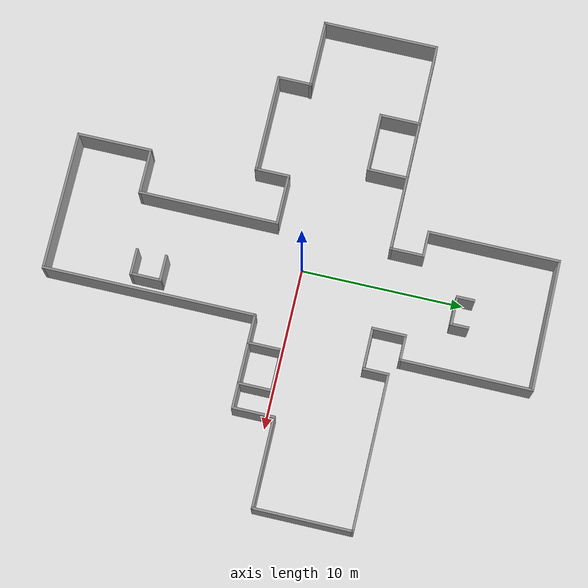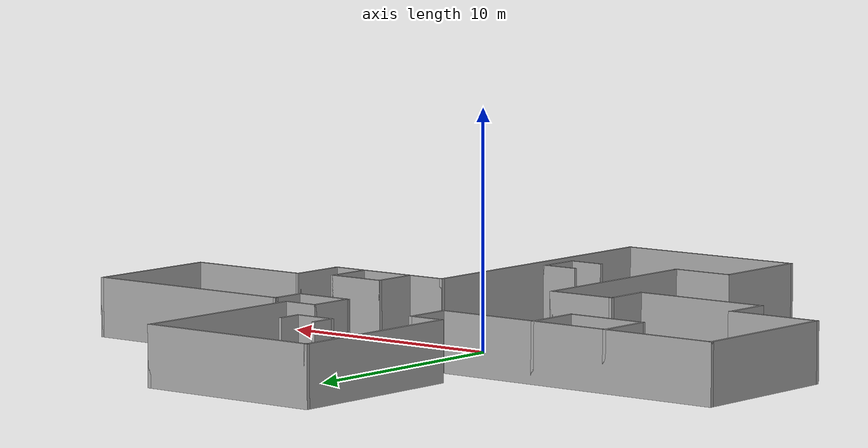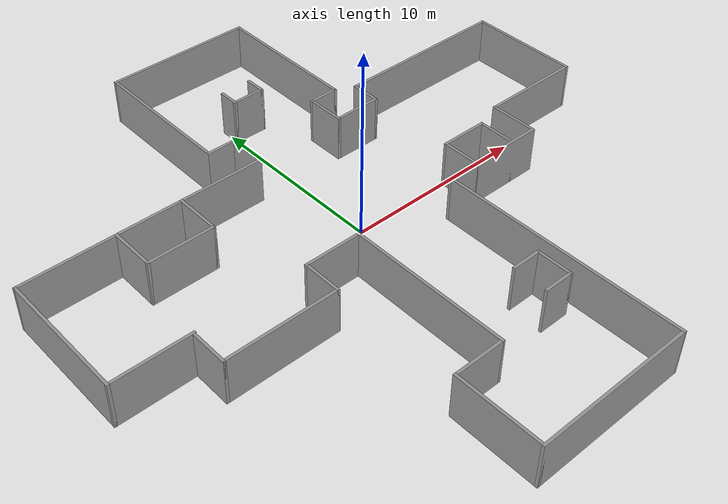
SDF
<?xml version='1.0'?>
<sdf version='1.7'>
  <model name='map2'>
    <pose>0 0 0 0 -0 0</pose>
    <link name='Wall_1'>
      <collision name='Wall_1_Collision'>
        <geometry>
          <box>
            <size>8.15 0.15 2.5</size>
          </box>
        </geometry>
        <pose>0 0 1.25 0 -0 0</pose>
      </collision>
      <visual name='Wall_1_Visual'>
        <pose>0 0 1.25 0 -0 0</pose>
        <geometry>
          <box>
            <size>8.15 0.15 2.5</size>
          </box>
        </geometry>
        <material>
          <script>
            <uri>file://media/materials/scripts/gazebo.material</uri>
            <name>Gazebo/Grey</name>
          </script>
          <ambient>1 1 1 1</ambient>
        </material>
        <meta>
          <layer>0</layer>
        </meta>
      </visual>
      <pose>-3.5 11 0 0 -0 -1.5708</pose>
    </link>
    <link name='Wall_11'>
      <collision name='Wall_11_Collision'>
        <geometry>
          <box>
            <size>1.65 0.15 2.5</size>
          </box>
        </geometry>
        <pose>0 0 1.25 0 -0 0</pose>
      </collision>
      <visual name='Wall_11_Visual'>
        <pose>0 0 1.25 0 -0 0</pose>
        <geometry>
          <box>
            <size>1.65 0.15 2.5</size>
          </box>
        </geometry>
        <material>
          <script>
            <uri>file://media/materials/scripts/gazebo.material</uri>
            <name>Gazebo/Grey</name>
          </script>
          <ambient>1 1 1 1</ambient>
        </material>
        <meta>
          <layer>0</layer>
        </meta>
      </visual>
      <pose>3.75 7 0 0 -0 0</pose>
    </link>
    <link name='Wall_13'>
      <collision name='Wall_13_Collision'>
        <geometry>
          <box>
            <size>8.15 0.15 2.5</size>
          </box>
        </geometry>
        <pose>0 0 1.25 0 -0 0</pose>
      </collision>
      <visual name='Wall_13_Visual'>
        <pose>0 0 1.25 0 -0 0</pose>
        <geometry>
          <box>
            <size>8.15 0.15 2.5</size>
          </box>
        </geometry>
        <material>
          <script>
            <uri>file://media/materials/scripts/gazebo.material</uri>
            <name>Gazebo/Grey</name>
          </script>
          <ambient>1 1 1 1</ambient>
        </material>
        <meta>
          <layer>0</layer>
        </meta>
      </visual>
      <pose>0.5 15 0 0 -0 0</pose>
    </link>
    <link name='Wall_15'>
      <collision name='Wall_15_Collision'>
        <geometry>
          <box>
            <size>13.15 0.15 2.5</size>
          </box>
        </geometry>
        <pose>0 0 1.25 0 -0 0</pose>
      </collision>
      <visual name='Wall_15_Visual'>
        <pose>0 0 1.25 0 -0 0</pose>
        <geometry>
          <box>
            <size>13.15 0.15 2.5</size>
          </box>
        </geometry>
        <material>
          <script>
            <uri>file://media/materials/scripts/gazebo.material</uri>
            <name>Gazebo/Grey</name>
          </script>
          <ambient>1 1 1 1</ambient>
        </material>
        <meta>
          <layer>0</layer>
        </meta>
      </visual>
      <pose>-8.5 5 0 0 -0 3.14159</pose>
    </link>
    <link name='Wall_17'>
      <collision name='Wall_17_Collision'>
        <geometry>
          <box>
            <size>3.65 0.15 2.5</size>
          </box>
        </geometry>
        <pose>0 0 1.25 0 -0 0</pose>
      </collision>
      <visual name='Wall_17_Visual'>
        <pose>0 0 1.25 0 -0 0</pose>
        <geometry>
          <box>
            <size>3.65 0.15 2.5</size>
          </box>
        </geometry>
        <material>
          <script>
            <uri>file://media/materials/scripts/gazebo.material</uri>
            <name>Gazebo/Grey</name>
          </script>
          <ambient>1 1 1 1</ambient>
        </material>
        <meta>
          <layer>0</layer>
        </meta>
      </visual>
      <pose>-8.25 2.6 0 0 -0 0</pose>
    </link>
    <link name='Wall_19'>
      <collision name='Wall_19_Collision'>
        <geometry>
          <box>
            <size>4.24305 0.15 2.5</size>
          </box>
        </geometry>
        <pose>0 0 1.25 0 -0 0</pose>
      </collision>
      <visual name='Wall_19_Visual'>
        <pose>0 0 1.25 0 -0 0</pose>
        <geometry>
          <box>
            <size>4.24305 0.15 2.5</size>
          </box>
        </geometry>
        <material>
          <script>
            <uri>file://media/materials/scripts/gazebo.material</uri>
            <name>Gazebo/Grey</name>
          </script>
          <ambient>1 1 1 1</ambient>
        </material>
        <meta>
          <layer>0</layer>
        </meta>
      </visual>
      <pose>-12.9535 -2 0 0 -0 0</pose>
    </link>
    <link name='Wall_21'>
      <collision name='Wall_21_Collision'>
        <geometry>
          <box>
            <size>6.05695 0.15 2.5</size>
          </box>
        </geometry>
        <pose>0 0 1.25 0 -0 0</pose>
      </collision>
      <visual name='Wall_21_Visual'>
        <pose>0 0 1.25 0 -0 0</pose>
        <geometry>
          <box>
            <size>6.05695 0.15 2.5</size>
          </box>
        </geometry>
        <material>
          <script>
            <uri>file://media/materials/scripts/gazebo.material</uri>
            <name>Gazebo/Grey</name>
          </script>
          <ambient>1 1 1 1</ambient>
        </material>
        <meta>
          <layer>0</layer>
        </meta>
      </visual>
      <pose>-7.95348 -4 0 0 -0 0</pose>
    </link>
    <link name='Wall_23'>
      <collision name='Wall_23_Collision'>
        <geometry>
          <box>
            <size>3.15 0.15 2.5</size>
          </box>
        </geometry>
        <pose>0 0 1.25 0 -0 0</pose>
      </collision>
      <visual name='Wall_23_Visual'>
        <pose>0 0 1.25 0 -0 0</pose>
        <geometry>
          <box>
            <size>3.15 0.15 2.5</size>
          </box>
        </geometry>
        <material>
          <script>
            <uri>file://media/materials/scripts/gazebo.material</uri>
            <name>Gazebo/Grey</name>
          </script>
          <ambient>1 1 1 1</ambient>
        </material>
        <meta>
          <layer>0</layer>
        </meta>
      </visual>
      <pose>-3.5 -2 0 0 -0 0</pose>
    </link>
    <link name='Wall_25'>
      <collision name='Wall_25_Collision'>
        <geometry>
          <box>
            <size>2.15 0.15 2.5</size>
          </box>
        </geometry>
        <pose>0 0 1.25 0 -0 0</pose>
      </collision>
      <visual name='Wall_25_Visual'>
        <pose>0 0 1.25 0 -0 0</pose>
        <geometry>
          <box>
            <size>2.15 0.15 2.5</size>
          </box>
        </geometry>
        <material>
          <script>
            <uri>file://media/materials/scripts/gazebo.material</uri>
            <name>Gazebo/Grey</name>
          </script>
          <ambient>1 1 1 1</ambient>
        </material>
        <meta>
          <layer>0</layer>
        </meta>
      </visual>
      <pose>-10.9535 -3 0 0 -0 -1.5708</pose>
    </link>
    <link name='Wall_27'>
      <collision name='Wall_27_Collision'>
        <geometry>
          <box>
            <size>2.15 0.15 2.5</size>
          </box>
        </geometry>
        <pose>0 0 1.25 0 -0 0</pose>
      </collision>
      <visual name='Wall_27_Visual'>
        <pose>0 0 1.25 0 -0 0</pose>
        <geometry>
          <box>
            <size>2.15 0.15 2.5</size>
          </box>
        </geometry>
        <material>
          <script>
            <uri>file://media/materials/scripts/gazebo.material</uri>
            <name>Gazebo/Grey</name>
          </script>
          <ambient>1 1 1 1</ambient>
        </material>
        <meta>
          <layer>0</layer>
        </meta>
      </visual>
      <pose>-5 -3 0 0 -0 -1.5708</pose>
    </link>
    <link name='Wall_29'>
      <collision name='Wall_29_Collision'>
        <geometry>
          <box>
            <size>7.15 0.15 2.5</size>
          </box>
        </geometry>
        <pose>0 0 1.25 0 -0 0</pose>
      </collision>
      <visual name='Wall_29_Visual'>
        <pose>0 0 1.25 0 -0 0</pose>
        <geometry>
          <box>
            <size>7.15 0.15 2.5</size>
          </box>
        </geometry>
        <material>
          <script>
            <uri>file://media/materials/scripts/gazebo.material</uri>
            <name>Gazebo/Grey</name>
          </script>
          <ambient>1 1 1 1</ambient>
        </material>
        <meta>
          <layer>0</layer>
        </meta>
      </visual>
      <pose>-15 1.5 0 0 -0 -1.5708</pose>
    </link>
    <link name='Wall_3'>
      <collision name='Wall_3_Collision'>
        <geometry>
          <box>
            <size>2.15 0.15 2.5</size>
          </box>
        </geometry>
        <pose>0 0 1.25 0 -0 0</pose>
      </collision>
      <visual name='Wall_3_Visual'>
        <pose>0 0 1.25 0 -0 0</pose>
        <geometry>
          <box>
            <size>2.15 0.15 2.5</size>
          </box>
        </geometry>
        <material>
          <script>
            <uri>file://media/materials/scripts/gazebo.material</uri>
            <name>Gazebo/Grey</name>
          </script>
          <ambient>1 1 1 1</ambient>
        </material>
        <meta>
          <layer>0</layer>
        </meta>
      </visual>
      <pose>-2 6 0 0 -0 -1.5708</pose>
    </link>
    <link name='Wall_31'>
      <collision name='Wall_31_Collision'>
        <geometry>
          <box>
            <size>2.55 0.15 2.5</size>
          </box>
        </geometry>
        <pose>0 0 1.25 0 -0 0</pose>
      </collision>
      <visual name='Wall_31_Visual'>
        <pose>0 0 1.25 0 -0 0</pose>
        <geometry>
          <box>
            <size>2.55 0.15 2.5</size>
          </box>
        </geometry>
        <material>
          <script>
            <uri>file://media/materials/scripts/gazebo.material</uri>
            <name>Gazebo/Grey</name>
          </script>
          <ambient>1 1 1 1</ambient>
        </material>
        <meta>
          <layer>0</layer>
        </meta>
      </visual>
      <pose>-10 3.8 0 0 -0 1.5708</pose>
    </link>
    <link name='Wall_33'>
      <collision name='Wall_33_Collision'>
        <geometry>
          <box>
            <size>2.55 0.15 2.5</size>
          </box>
        </geometry>
        <pose>0 0 1.25 0 -0 0</pose>
      </collision>
      <visual name='Wall_33_Visual'>
        <pose>0 0 1.25 0 -0 0</pose>
        <geometry>
          <box>
            <size>2.55 0.15 2.5</size>
          </box>
        </geometry>
        <material>
          <script>
            <uri>file://media/materials/scripts/gazebo.material</uri>
            <name>Gazebo/Grey</name>
          </script>
          <ambient>1 1 1 1</ambient>
        </material>
        <meta>
          <layer>0</layer>
        </meta>
      </visual>
      <pose>-6.5 3.8 0 0 -0 1.5708</pose>
    </link>
    <link name='Wall_35'>
      <collision name='Wall_35_Collision'>
        <geometry>
          <box>
            <size>8.65 0.15 2.5</size>
          </box>
        </geometry>
        <pose>0 0 1.25 0 -0 0</pose>
      </collision>
      <visual name='Wall_35_Visual'>
        <pose>0 0 1.25 0 -0 0</pose>
        <geometry>
          <box>
            <size>8.65 0.15 2.5</size>
          </box>
        </geometry>
        <material>
          <script>
            <uri>file://media/materials/scripts/gazebo.material</uri>
            <name>Gazebo/Grey</name>
          </script>
          <ambient>1 1 1 1</ambient>
        </material>
        <meta>
          <layer>0</layer>
        </meta>
      </visual>
      <pose>-2 -6.25 0 0 -0 -1.5708</pose>
    </link>
    <link name='Wall_37'>
      <collision name='Wall_37_Collision'>
        <geometry>
          <box>
            <size>4.65 0.15 2.5</size>
          </box>
        </geometry>
        <pose>0 0 1.25 0 -0 0</pose>
      </collision>
      <visual name='Wall_37_Visual'>
        <pose>0 0 1.25 0 -0 0</pose>
        <geometry>
          <box>
            <size>4.65 0.15 2.5</size>
          </box>
        </geometry>
        <material>
          <script>
            <uri>file://media/materials/scripts/gazebo.material</uri>
            <name>Gazebo/Grey</name>
          </script>
          <ambient>1 1 1 1</ambient>
        </material>
        <meta>
          <layer>0</layer>
        </meta>
      </visual>
      <pose>-4.7 -12.75 0 0 -0 1.5708</pose>
    </link>
    <link name='Wall_39'>
      <collision name='Wall_39_Collision'>
        <geometry>
          <box>
            <size>13.15 0.15 2.5</size>
          </box>
        </geometry>
        <pose>0 0 1.25 0 -0 0</pose>
      </collision>
      <visual name='Wall_39_Visual'>
        <pose>0 0 1.25 0 -0 0</pose>
        <geometry>
          <box>
            <size>13.15 0.15 2.5</size>
          </box>
        </geometry>
        <material>
          <script>
            <uri>file://media/materials/scripts/gazebo.material</uri>
            <name>Gazebo/Grey</name>
          </script>
          <ambient>1 1 1 1</ambient>
        </material>
        <meta>
          <layer>0</layer>
        </meta>
      </visual>
      <pose>3.8 -8.5 0 0 -0 -1.5708</pose>
    </link>
    <link name='Wall_41'>
      <collision name='Wall_41_Collision'>
        <geometry>
          <box>
            <size>2.85 0.15 2.5</size>
          </box>
        </geometry>
        <pose>0 0 1.25 0 -0 0</pose>
      </collision>
      <visual name='Wall_41_Visual'>
        <pose>0 0 1.25 0 -0 0</pose>
        <geometry>
          <box>
            <size>2.85 0.15 2.5</size>
          </box>
        </geometry>
        <material>
          <script>
            <uri>file://media/materials/scripts/gazebo.material</uri>
            <name>Gazebo/Grey</name>
          </script>
          <ambient>1 1 1 1</ambient>
        </material>
        <meta>
          <layer>0</layer>
        </meta>
      </visual>
      <pose>-3.35 -10.5 0 0 -0 0</pose>
    </link>
    <link name='Wall_43'>
      <collision name='Wall_43_Collision'>
        <geometry>
          <box>
            <size>8.65 0.15 2.5</size>
          </box>
        </geometry>
        <pose>0 0 1.25 0 -0 0</pose>
      </collision>
      <visual name='Wall_43_Visual'>
        <pose>0 0 1.25 0 -0 0</pose>
        <geometry>
          <box>
            <size>8.65 0.15 2.5</size>
          </box>
        </geometry>
        <material>
          <script>
            <uri>file://media/materials/scripts/gazebo.material</uri>
            <name>Gazebo/Grey</name>
          </script>
          <ambient>1 1 1 1</ambient>
        </material>
        <meta>
          <layer>0</layer>
        </meta>
      </visual>
      <pose>-0.45 -15 0 0 -0 0</pose>
    </link>
    <link name='Wall_45'>
      <collision name='Wall_45_Collision'>
        <geometry>
          <box>
            <size>2.65 0.15 2.5</size>
          </box>
        </geometry>
        <pose>0 0 1.25 0 -0 0</pose>
      </collision>
      <visual name='Wall_45_Visual'>
        <pose>0 0 1.25 0 -0 0</pose>
        <geometry>
          <box>
            <size>2.65 0.15 2.5</size>
          </box>
        </geometry>
        <material>
          <script>
            <uri>file://media/materials/scripts/gazebo.material</uri>
            <name>Gazebo/Grey</name>
          </script>
          <ambient>1 1 1 1</ambient>
        </material>
        <meta>
          <layer>0</layer>
        </meta>
      </visual>
      <pose>9.5 -0.75 0 0 -0 1.5708</pose>
    </link>
    <link name='Wall_47'>
      <collision name='Wall_47_Collision'>
        <geometry>
          <box>
            <size>6.15 0.15 2.5</size>
          </box>
        </geometry>
        <pose>0 0 1.25 0 -0 0</pose>
      </collision>
      <visual name='Wall_47_Visual'>
        <pose>0 0 1.25 0 -0 0</pose>
        <geometry>
          <box>
            <size>6.15 0.15 2.5</size>
          </box>
        </geometry>
        <material>
          <script>
            <uri>file://media/materials/scripts/gazebo.material</uri>
            <name>Gazebo/Grey</name>
          </script>
          <ambient>1 1 1 1</ambient>
        </material>
        <meta>
          <layer>0</layer>
        </meta>
      </visual>
      <pose>15 3.5 0 0 -0 1.5708</pose>
    </link>
    <link name='Wall_49'>
      <collision name='Wall_49_Collision'>
        <geometry>
          <box>
            <size>1.65 0.15 2.5</size>
          </box>
        </geometry>
        <pose>0 0 1.25 0 -0 0</pose>
      </collision>
      <visual name='Wall_49_Visual'>
        <pose>0 0 1.25 0 -0 0</pose>
        <geometry>
          <box>
            <size>1.65 0.15 2.5</size>
          </box>
        </geometry>
        <material>
          <script>
            <uri>file://media/materials/scripts/gazebo.material</uri>
            <name>Gazebo/Grey</name>
          </script>
          <ambient>1 1 1 1</ambient>
        </material>
        <meta>
          <layer>0</layer>
        </meta>
      </visual>
      <pose>5.5 5.75 0 0 -0 1.5708</pose>
    </link>
    <link name='Wall_5'>
      <collision name='Wall_5_Collision'>
        <geometry>
          <box>
            <size>2.15 0.15 2.5</size>
          </box>
        </geometry>
        <pose>0 0 1.25 0 -0 0</pose>
      </collision>
      <visual name='Wall_5_Visual'>
        <pose>0 0 1.25 0 -0 0</pose>
        <geometry>
          <box>
            <size>2.15 0.15 2.5</size>
          </box>
        </geometry>
        <material>
          <script>
            <uri>file://media/materials/scripts/gazebo.material</uri>
            <name>Gazebo/Grey</name>
          </script>
          <ambient>1 1 1 1</ambient>
        </material>
        <meta>
          <layer>0</layer>
        </meta>
      </visual>
      <pose>3 6 0 0 -0 -1.5708</pose>
    </link>
    <link name='Wall_51'>
      <collision name='Wall_51_Collision'>
        <geometry>
          <box>
            <size>9.65 0.15 2.5</size>
          </box>
        </geometry>
        <pose>0 0 1.25 0 -0 0</pose>
      </collision>
      <visual name='Wall_51_Visual'>
        <pose>0 0 1.25 0 -0 0</pose>
        <geometry>
          <box>
            <size>9.65 0.15 2.5</size>
          </box>
        </geometry>
        <material>
          <script>
            <uri>file://media/materials/scripts/gazebo.material</uri>
            <name>Gazebo/Grey</name>
          </script>
          <ambient>1 1 1 1</ambient>
        </material>
        <meta>
          <layer>0</layer>
        </meta>
      </visual>
      <pose>10.25 6.5 0 0 -0 0</pose>
    </link>
    <link name='Wall_53'>
      <collision name='Wall_53_Collision'>
        <geometry>
          <box>
            <size>5.65 0.15 2.5</size>
          </box>
        </geometry>
        <pose>0 0 1.25 0 -0 0</pose>
      </collision>
      <visual name='Wall_53_Visual'>
        <pose>0 0 1.25 0 -0 0</pose>
        <geometry>
          <box>
            <size>5.65 0.15 2.5</size>
          </box>
        </geometry>
        <material>
          <script>
            <uri>file://media/materials/scripts/gazebo.material</uri>
            <name>Gazebo/Grey</name>
          </script>
          <ambient>1 1 1 1</ambient>
        </material>
        <meta>
          <layer>0</layer>
        </meta>
      </visual>
      <pose>12.25 0.5 0 0 -0 0</pose>
    </link>
    <link name='Wall_55'>
      <collision name='Wall_55_Collision'>
        <geometry>
          <box>
            <size>5.85 0.15 2.5</size>
          </box>
        </geometry>
        <pose>0 0 1.25 0 -0 0</pose>
      </collision>
      <visual name='Wall_55_Visual'>
        <pose>0 0 1.25 0 -0 0</pose>
        <geometry>
          <box>
            <size>5.85 0.15 2.5</size>
          </box>
        </geometry>
        <material>
          <script>
            <uri>file://media/materials/scripts/gazebo.material</uri>
            <name>Gazebo/Grey</name>
          </script>
          <ambient>1 1 1 1</ambient>
        </material>
        <meta>
          <layer>0</layer>
        </meta>
      </visual>
      <pose>6.65 -2 0 0 -0 0</pose>
    </link>
    <link name='Wall_57'>
      <collision name='Wall_57_Collision'>
        <geometry>
          <box>
            <size>2.65 0.15 2.5</size>
          </box>
        </geometry>
        <pose>0 0 1.25 0 -0 0</pose>
      </collision>
      <visual name='Wall_57_Visual'>
        <pose>0 0 1.25 0 -0 0</pose>
        <geometry>
          <box>
            <size>2.65 0.15 2.5</size>
          </box>
        </geometry>
        <material>
          <script>
            <uri>file://media/materials/scripts/gazebo.material</uri>
            <name>Gazebo/Grey</name>
          </script>
          <ambient>1 1 1 1</ambient>
        </material>
        <meta>
          <layer>0</layer>
        </meta>
      </visual>
      <pose>4.25 5 0 0 -0 0</pose>
    </link>
    <link name='Wall_59'>
      <collision name='Wall_59_Collision'>
        <geometry>
          <box>
            <size>2.65 0.15 2.5</size>
          </box>
        </geometry>
        <pose>0 0 1.25 0 -0 0</pose>
      </collision>
      <visual name='Wall_59_Visual'>
        <pose>0 0 1.25 0 -0 0</pose>
        <geometry>
          <box>
            <size>2.65 0.15 2.5</size>
          </box>
        </geometry>
        <material>
          <script>
            <uri>file://media/materials/scripts/gazebo.material</uri>
            <name>Gazebo/Grey</name>
          </script>
          <ambient>1 1 1 1</ambient>
        </material>
        <meta>
          <layer>0</layer>
        </meta>
      </visual>
      <pose>6.75 0 0 0 -0 0</pose>
    </link>
    <link name='Wall_61'>
      <collision name='Wall_61_Collision'>
        <geometry>
          <box>
            <size>2.15 0.15 2.5</size>
          </box>
        </geometry>
        <pose>0 0 1.25 0 -0 0</pose>
      </collision>
      <visual name='Wall_61_Visual'>
        <pose>0 0 1.25 0 -0 0</pose>
        <geometry>
          <box>
            <size>2.15 0.15 2.5</size>
          </box>
        </geometry>
        <material>
          <script>
            <uri>file://media/materials/scripts/gazebo.material</uri>
            <name>Gazebo/Grey</name>
          </script>
          <ambient>1 1 1 1</ambient>
        </material>
        <meta>
          <layer>0</layer>
        </meta>
      </visual>
      <pose>5.5 -1 0 0 -0 -1.5708</pose>
    </link>
    <link name='Wall_63'>
      <collision name='Wall_63_Collision'>
        <geometry>
          <box>
            <size>2.15 0.15 2.5</size>
          </box>
        </geometry>
        <pose>0 0 1.25 0 -0 0</pose>
      </collision>
      <visual name='Wall_63_Visual'>
        <pose>0 0 1.25 0 -0 0</pose>
        <geometry>
          <box>
            <size>2.15 0.15 2.5</size>
          </box>
        </geometry>
        <material>
          <script>
            <uri>file://media/materials/scripts/gazebo.material</uri>
            <name>Gazebo/Grey</name>
          </script>
          <ambient>1 1 1 1</ambient>
        </material>
        <meta>
          <layer>0</layer>
        </meta>
      </visual>
      <pose>8 -1 0 0 -0 -1.5708</pose>
    </link>
    <link name='Wall_65'>
      <collision name='Wall_65_Collision'>
        <geometry>
          <box>
            <size>1.15 0.15 2.5</size>
          </box>
        </geometry>
        <pose>0 0 1.25 0 -0 0</pose>
      </collision>
      <visual name='Wall_65_Visual'>
        <pose>0 0 1.25 0 -0 0</pose>
        <geometry>
          <box>
            <size>1.15 0.15 2.5</size>
          </box>
        </geometry>
        <material>
          <script>
            <uri>file://media/materials/scripts/gazebo.material</uri>
            <name>Gazebo/Grey</name>
          </script>
          <ambient>1 1 1 1</ambient>
        </material>
        <meta>
          <layer>0</layer>
        </meta>
      </visual>
      <pose>0 10 0 0 -0 1.5708</pose>
    </link>
    <link name='Wall_67'>
      <collision name='Wall_67_Collision'>
        <geometry>
          <box>
            <size>1.15 0.15 2.5</size>
          </box>
        </geometry>
        <pose>0 0 1.25 0 -0 0</pose>
      </collision>
      <visual name='Wall_67_Visual'>
        <pose>0 0 1.25 0 -0 0</pose>
        <geometry>
          <box>
            <size>1.15 0.15 2.5</size>
          </box>
        </geometry>
        <material>
          <script>
            <uri>file://media/materials/scripts/gazebo.material</uri>
            <name>Gazebo/Grey</name>
          </script>
          <ambient>1 1 1 1</ambient>
        </material>
        <meta>
          <layer>0</layer>
        </meta>
      </visual>
      <pose>1.7 10 0 0 -0 1.5708</pose>
    </link>
    <link name='Wall_69'>
      <collision name='Wall_69_Collision'>
        <geometry>
          <box>
            <size>1.85 0.15 2.5</size>
          </box>
        </geometry>
        <pose>0 0 1.25 0 -0 0</pose>
      </collision>
      <visual name='Wall_69_Visual'>
        <pose>0 0 1.25 0 -0 0</pose>
        <geometry>
          <box>
            <size>1.85 0.15 2.5</size>
          </box>
        </geometry>
        <material>
          <script>
            <uri>file://media/materials/scripts/gazebo.material</uri>
            <name>Gazebo/Grey</name>
          </script>
          <ambient>1 1 1 1</ambient>
        </material>
        <meta>
          <layer>0</layer>
        </meta>
      </visual>
      <pose>0.85 9.5 0 0 -0 0</pose>
    </link>
    <link name='Wall_7'>
      <collision name='Wall_7_Collision'>
        <geometry>
          <box>
            <size>8.15 0.15 2.5</size>
          </box>
        </geometry>
        <pose>0 0 1.25 0 -0 0</pose>
      </collision>
      <visual name='Wall_7_Visual'>
        <pose>0 0 1.25 0 -0 0</pose>
        <geometry>
          <box>
            <size>8.15 0.15 2.5</size>
          </box>
        </geometry>
        <material>
          <script>
            <uri>file://media/materials/scripts/gazebo.material</uri>
            <name>Gazebo/Grey</name>
          </script>
          <ambient>1 1 1 1</ambient>
        </material>
        <meta>
          <layer>0</layer>
        </meta>
      </visual>
      <pose>4.5 11 0 0 -0 -1.5708</pose>
    </link>
    <link name='Wall_71'>
      <collision name='Wall_71_Collision'>
        <geometry>
          <box>
            <size>1.65 0.15 2.5</size>
          </box>
        </geometry>
        <pose>0 0 1.25 0 -0 0</pose>
      </collision>
      <visual name='Wall_71_Visual'>
        <pose>0 0 1.25 0 -0 0</pose>
        <geometry>
          <box>
            <size>1.65 0.15 2.5</size>
          </box>
        </geometry>
        <material>
          <script>
            <uri>file://media/materials/scripts/gazebo.material</uri>
            <name>Gazebo/Grey</name>
          </script>
          <ambient>1 1 1 1</ambient>
        </material>
        <meta>
          <layer>0</layer>
        </meta>
      </visual>
      <pose>2.25 -8 0 0 -0 0</pose>
    </link>
    <link name='Wall_73'>
      <collision name='Wall_73_Collision'>
        <geometry>
          <box>
            <size>1.65 0.15 2.5</size>
          </box>
        </geometry>
        <pose>0 0 1.25 0 -0 0</pose>
      </collision>
      <visual name='Wall_73_Visual'>
        <pose>0 0 1.25 0 -0 0</pose>
        <geometry>
          <box>
            <size>1.65 0.15 2.5</size>
          </box>
        </geometry>
        <material>
          <script>
            <uri>file://media/materials/scripts/gazebo.material</uri>
            <name>Gazebo/Grey</name>
          </script>
          <ambient>1 1 1 1</ambient>
        </material>
        <meta>
          <layer>0</layer>
        </meta>
      </visual>
      <pose>2.25 -9.8 0 0 -0 0</pose>
    </link>
    <link name='Wall_75'>
      <collision name='Wall_75_Collision'>
        <geometry>
          <box>
            <size>1.95 0.15 2.5</size>
          </box>
        </geometry>
        <pose>0 0 1.25 0 -0 0</pose>
      </collision>
      <visual name='Wall_75_Visual'>
        <pose>0 0 1.25 0 -0 0</pose>
        <geometry>
          <box>
            <size>1.95 0.15 2.5</size>
          </box>
        </geometry>
        <material>
          <script>
            <uri>file://media/materials/scripts/gazebo.material</uri>
            <name>Gazebo/Grey</name>
          </script>
          <ambient>1 1 1 1</ambient>
        </material>
        <meta>
          <layer>0</layer>
        </meta>
      </visual>
      <pose>3 -8.9 0 0 -0 -1.5708</pose>
    </link>
    <link name='Wall_9'>
      <collision name='Wall_9_Collision'>
        <geometry>
          <box>
            <size>1.65 0.15 2.5</size>
          </box>
        </geometry>
        <pose>0 0 1.25 0 -0 0</pose>
      </collision>
      <visual name='Wall_9_Visual'>
        <pose>0 0 1.25 0 -0 0</pose>
        <geometry>
          <box>
            <size>1.65 0.15 2.5</size>
          </box>
        </geometry>
        <material>
          <script>
            <uri>file://media/materials/scripts/gazebo.material</uri>
            <name>Gazebo/Grey</name>
          </script>
          <ambient>1 1 1 1</ambient>
        </material>
        <meta>
          <layer>0</layer>
        </meta>
      </visual>
      <pose>-2.75 7 0 0 -0 0</pose>
    </link>
    <static>1</static>
  </model>
</sdf>
